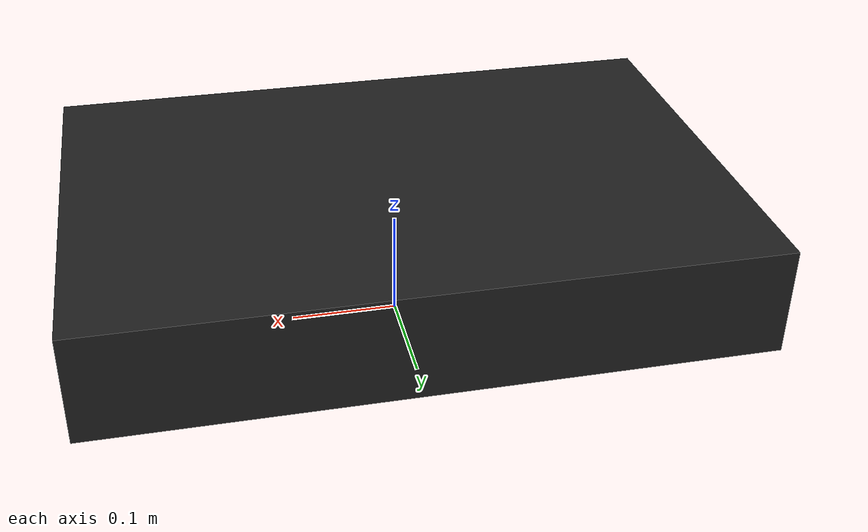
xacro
<?xml version="1.0"?>
<robot  xmlns:xacro="http://www.ros.org/wiki/xacro">

    <xacro:property name="base_length" value="0.6" />
    <xacro:property name="base_width" value="0.4" />
    <xacro:property name="base_height" value="0.1" />
    <xacro:property name="wheel_radius" value="0.05" />
    <xacro:property name="wheel_length" value="0.05" />
    <xacro:property name="imu_length" value="0.01" />
    <xacro:property name="imu_width" value="0.01" />
    <xacro:property name="imu_height" value="0.002" />
    <xacro:property name="lidar_radius" value="0.025" />
    <xacro:property name="lidar_length" value="0.03" />

    <link name="base_footprint"/>
    <link name="base_link">
        <visual>
            <geometry>
                <box size="${base_length} ${base_width} ${base_height}" />
            </geometry>
            <origin xyz="0 0 ${base_height / 2.0}" rpy="0 0 0" />
            <material name="black" />
        </visual>
        <collision>
            <geometry>
                <box size="${base_length} ${base_width} ${base_height}" />
            </geometry>
            <origin xyz="0 0 ${base_height / 2.0}" rpy="0 0 0" />
        </collision>
        <xacro:box_inertia m="15.0" x="${base_length}" y="${base_width}" z="${base_height}"
                           o_xyz="0 0 ${base_height / 2.0}" o_rpy="0 0 0" />
    </link>
    <joint name="base_moblile_joint" type="fixed">
        <parent link="base_footprint" />
        <child link="base_link" />
        <origin xyz="0 0 ${wheel_radius}" rpy="0 0 0"/>
    </joint>

</robot>
